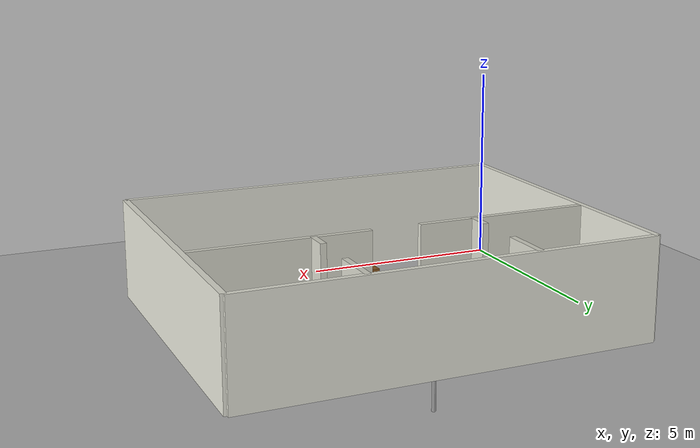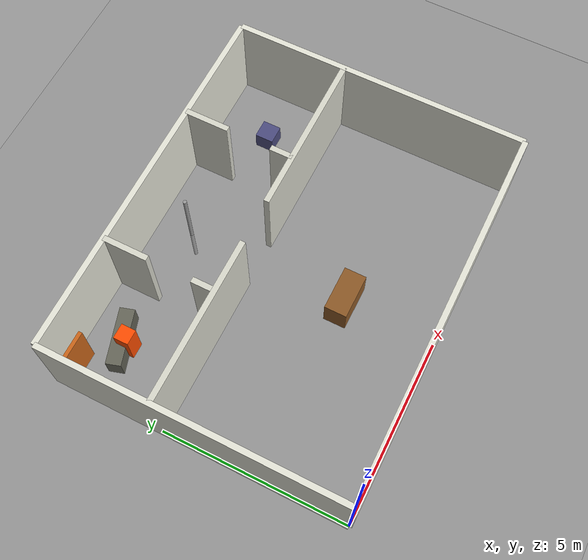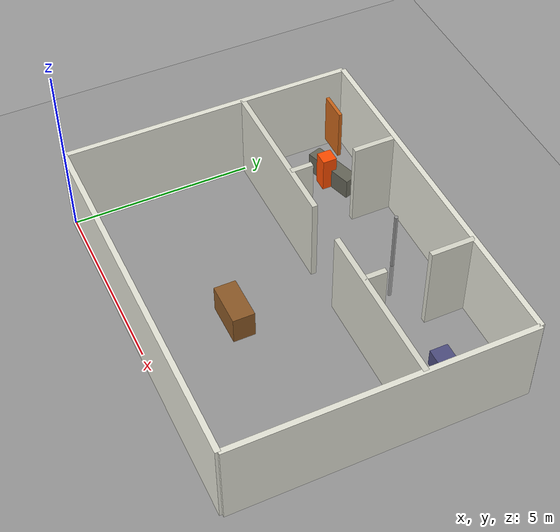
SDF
<?xml version="1.0" ?>
<sdf version="1.9">
  <world name="indoor_test">

    <!-- 필수 플러그인 (Gazebo Harmonic) -->
    <plugin filename="gz-sim-physics-system"
            name="gz::sim::systems::Physics"/>
    <plugin filename="gz-sim-user-commands-system"
            name="gz::sim::systems::UserCommands"/>
    <plugin filename="gz-sim-scene-broadcaster-system"
            name="gz::sim::systems::SceneBroadcaster"/>
    <plugin filename="gz-sim-sensors-system"
            name="gz::sim::systems::Sensors">
      <render_engine>ogre2</render_engine>
    </plugin>
    <plugin filename="gz-sim-contact-system"
            name="gz::sim::systems::Contact"/>
    <plugin filename="gz-sim-imu-system"
            name="gz::sim::systems::Imu"/>

    <!-- 대기 온도 (열화상 배경 기준) -->
    <atmosphere type="adiabatic">
      <temperature>293.15</temperature>
    </atmosphere>

    <!-- 물리 엔진 설정 -->
    <physics name="default_physics" type="ode">
      <max_step_size>0.002</max_step_size>  <!-- G-2 RTF: was 0.001 -->
      <real_time_factor>1.0</real_time_factor>
      <real_time_update_rate>500</real_time_update_rate>  <!-- G-2 RTF: was 1000 -->
    </physics>

    <!-- 조명 -->
    <light type="directional" name="sun">
      <cast_shadows>true</cast_shadows>
      <pose>0 0 10 0 0 0</pose>
      <diffuse>0.8 0.8 0.8 1</diffuse>
      <specular>0.2 0.2 0.2 1</specular>
      <attenuation>
        <range>1000</range>
        <constant>0.9</constant>
        <linear>0.01</linear>
        <quadratic>0.001</quadratic>
      </attenuation>
      <direction>-0.5 0.1 -0.9</direction>
    </light>

    <!-- 바닥 -->
    <model name="ground_plane">
      <static>true</static>
      <link name="link">
        <collision name="collision">
          <geometry>
            <plane>
              <normal>0 0 1</normal>
              <size>20 20</size>
            </plane>
          </geometry>
        </collision>
        <visual name="visual">
          <geometry>
            <plane>
              <normal>0 0 1</normal>
              <size>20 20</size>
            </plane>
          </geometry>
          <material>
            <ambient>0.6 0.6 0.6 1</ambient>
            <diffuse>0.6 0.6 0.6 1</diffuse>
          </material>
        </visual>
      </link>
    </model>

    <!-- 벽 매크로 대신 개별 벽 모델 -->
    <!-- 벽 두께: 0.15m, 높이: 2.5m -->

    <!-- ===== 외벽 ===== -->

    <!-- 남쪽 외벽 (하단) -->
    <model name="wall_south">
      <static>true</static>
      <pose>5 0 1.25 0 0 0</pose>
      <link name="link">
        <collision name="collision">
          <geometry><box><size>10 0.15 2.5</size></box></geometry>
        </collision>
        <visual name="visual">
          <geometry><box><size>10 0.15 2.5</size></box></geometry>
          <material>
            <ambient>0.9 0.9 0.85 1</ambient>
            <diffuse>0.9 0.9 0.85 1</diffuse>
          </material>
        </visual>
      </link>
    </model>

    <!-- 북쪽 외벽 (상단) -->
    <model name="wall_north">
      <static>true</static>
      <pose>5 8 1.25 0 0 0</pose>
      <link name="link">
        <collision name="collision">
          <geometry><box><size>10 0.15 2.5</size></box></geometry>
        </collision>
        <visual name="visual">
          <geometry><box><size>10 0.15 2.5</size></box></geometry>
          <material>
            <ambient>0.9 0.9 0.85 1</ambient>
            <diffuse>0.9 0.9 0.85 1</diffuse>
          </material>
        </visual>
      </link>
    </model>

    <!-- 서쪽 외벽 (좌측) -->
    <model name="wall_west">
      <static>true</static>
      <pose>0 4 1.25 0 0 0</pose>
      <link name="link">
        <collision name="collision">
          <geometry><box><size>0.15 8 2.5</size></box></geometry>
        </collision>
        <visual name="visual">
          <geometry><box><size>0.15 8 2.5</size></box></geometry>
          <material>
            <ambient>0.9 0.9 0.85 1</ambient>
            <diffuse>0.9 0.9 0.85 1</diffuse>
          </material>
        </visual>
      </link>
    </model>

    <!-- 동쪽 외벽 (우측) -->
    <model name="wall_east">
      <static>true</static>
      <pose>10 4 1.25 0 0 0</pose>
      <link name="link">
        <collision name="collision">
          <geometry><box><size>0.15 8 2.5</size></box></geometry>
        </collision>
        <visual name="visual">
          <geometry><box><size>0.15 8 2.5</size></box></geometry>
          <material>
            <ambient>0.9 0.9 0.85 1</ambient>
            <diffuse>0.9 0.9 0.85 1</diffuse>
          </material>
        </visual>
      </link>
    </model>

    <!-- ===== 내벽 (방 분리) ===== -->

    <!-- 방A-복도 구분 벽 (좌측 세로벽, 문 제외) -->
    <!-- 하단 부분: y=5 ~ y=5.6 (문 아래) -->
    <model name="wall_a_corridor_lower">
      <static>true</static>
      <pose>3 5.3 1.25 0 0 0</pose>
      <link name="link">
        <collision name="collision">
          <geometry><box><size>0.15 0.6 2.5</size></box></geometry>
        </collision>
        <visual name="visual">
          <geometry><box><size>0.15 0.6 2.5</size></box></geometry>
          <material>
            <ambient>0.85 0.85 0.80 1</ambient>
            <diffuse>0.85 0.85 0.80 1</diffuse>
          </material>
        </visual>
      </link>
    </model>

    <!-- 상단 부분: y=6.8 ~ y=8 (문 위) -->
    <model name="wall_a_corridor_upper">
      <static>true</static>
      <pose>3 7.4 1.25 0 0 0</pose>
      <link name="link">
        <collision name="collision">
          <geometry><box><size>0.15 1.2 2.5</size></box></geometry>
        </collision>
        <visual name="visual">
          <geometry><box><size>0.15 1.2 2.5</size></box></geometry>
          <material>
            <ambient>0.85 0.85 0.80 1</ambient>
            <diffuse>0.85 0.85 0.80 1</diffuse>
          </material>
        </visual>
      </link>
    </model>

    <!-- 방B-복도 구분 벽 (우측 세로벽, 문 제외) -->
    <!-- 하단 부분 -->
    <model name="wall_b_corridor_lower">
      <static>true</static>
      <pose>7 5.3 1.25 0 0 0</pose>
      <link name="link">
        <collision name="collision">
          <geometry><box><size>0.15 0.6 2.5</size></box></geometry>
        </collision>
        <visual name="visual">
          <geometry><box><size>0.15 0.6 2.5</size></box></geometry>
          <material>
            <ambient>0.85 0.85 0.80 1</ambient>
            <diffuse>0.85 0.85 0.80 1</diffuse>
          </material>
        </visual>
      </link>
    </model>

    <!-- 상단 부분 -->
    <model name="wall_b_corridor_upper">
      <static>true</static>
      <pose>7 7.4 1.25 0 0 0</pose>
      <link name="link">
        <collision name="collision">
          <geometry><box><size>0.15 1.2 2.5</size></box></geometry>
        </collision>
        <visual name="visual">
          <geometry><box><size>0.15 1.2 2.5</size></box></geometry>
          <material>
            <ambient>0.85 0.85 0.80 1</ambient>
            <diffuse>0.85 0.85 0.80 1</diffuse>
          </material>
        </visual>
      </link>
    </model>

    <!-- 복도-방C 구분 가로벽 (문 제외) -->
    <!-- 좌측 부분: x=0 ~ x=4.4 -->
    <model name="wall_corridor_c_left">
      <static>true</static>
      <pose>2.2 5 1.25 0 0 0</pose>
      <link name="link">
        <collision name="collision">
          <geometry><box><size>4.4 0.15 2.5</size></box></geometry>
        </collision>
        <visual name="visual">
          <geometry><box><size>4.4 0.15 2.5</size></box></geometry>
          <material>
            <ambient>0.85 0.85 0.80 1</ambient>
            <diffuse>0.85 0.85 0.80 1</diffuse>
          </material>
        </visual>
      </link>
    </model>

    <!-- 우측 부분: x=5.6 ~ x=10 -->
    <model name="wall_corridor_c_right">
      <static>true</static>
      <pose>7.8 5 1.25 0 0 0</pose>
      <link name="link">
        <collision name="collision">
          <geometry><box><size>4.4 0.15 2.5</size></box></geometry>
        </collision>
        <visual name="visual">
          <geometry><box><size>4.4 0.15 2.5</size></box></geometry>
          <material>
            <ambient>0.85 0.85 0.80 1</ambient>
            <diffuse>0.85 0.85 0.80 1</diffuse>
          </material>
        </visual>
      </link>
    </model>

    <!-- ===== 장애물 (가구/잔해 시뮬레이션) ===== -->

    <!-- 방 C 중앙 테이블 -->
    <model name="table_c">
      <static>true</static>
      <pose>5 2.5 0.4 0 0 0</pose>
      <link name="link">
        <collision name="collision">
          <geometry><box><size>1.2 0.6 0.8</size></box></geometry>
        </collision>
        <visual name="visual">
          <geometry><box><size>1.2 0.6 0.8</size></box></geometry>
          <material>
            <ambient>0.55 0.35 0.15 1</ambient>
            <diffuse>0.55 0.35 0.15 1</diffuse>
          </material>
        </visual>
      </link>
    </model>

    <!-- 방 A 장애물 (쓰러진 선반) -->
    <model name="debris_a">
      <static>true</static>
      <pose>1.5 7 0.3 0 0 0.3</pose>
      <link name="link">
        <collision name="collision">
          <geometry><box><size>1.5 0.4 0.6</size></box></geometry>
        </collision>
        <visual name="visual">
          <geometry><box><size>1.5 0.4 0.6</size></box></geometry>
          <material>
            <ambient>0.4 0.4 0.35 1</ambient>
            <diffuse>0.4 0.4 0.35 1</diffuse>
          </material>
        </visual>
      </link>
    </model>

    <!-- 방 B 의자 -->
    <model name="chair_b">
      <static>true</static>
      <pose>8.5 6.5 0.25 0 0 0</pose>
      <link name="link">
        <collision name="collision">
          <geometry><box><size>0.5 0.5 0.5</size></box></geometry>
        </collision>
        <visual name="visual">
          <geometry><box><size>0.5 0.5 0.5</size></box></geometry>
          <material>
            <ambient>0.3 0.3 0.5 1</ambient>
            <diffuse>0.3 0.3 0.5 1</diffuse>
          </material>
        </visual>
      </link>
    </model>

    <!-- ===== 열원 (열화상 카메라 테스트용) ===== -->

    <!-- 방 A 화재 열원 (주 화점: 쓰러진 선반 근처) -->
    <!-- 600°C = 873.15 K: 초기 화재 온도 수준 -->
    <model name="fire_source_a">
      <static>true</static>
      <pose>1.5 6.8 0.5 0 0 0</pose>
      <link name="link">
        <visual name="visual">
          <geometry>
            <box><size>0.4 0.4 1.0</size></box>
          </geometry>
          <material>
            <ambient>1.0 0.3 0.0 1</ambient>
            <diffuse>1.0 0.3 0.0 1</diffuse>
          </material>
        </visual>
      </link>
      <plugin filename="gz-sim-thermal-system"
              name="gz::sim::systems::Thermal">
        <temperature>873.15</temperature>
      </plugin>
    </model>

    <!-- 방 A 확산 열원 (벽면 복사열: 200°C) -->
    <model name="heat_wall_a">
      <static>true</static>
      <pose>0.5 7.5 1.0 0 0 0</pose>
      <link name="link">
        <visual name="visual">
          <geometry>
            <box><size>0.8 0.1 1.5</size></box>
          </geometry>
          <material>
            <ambient>0.8 0.4 0.1 1</ambient>
            <diffuse>0.8 0.4 0.1 1</diffuse>
          </material>
        </visual>
      </link>
      <plugin filename="gz-sim-thermal-system"
              name="gz::sim::systems::Thermal">
        <temperature>473.15</temperature>
      </plugin>
    </model>

    <!-- 복도 온수 파이프 (60°C: 약한 열 시그니처, 오탐 테스트용) -->
    <model name="hot_pipe_corridor">
      <static>true</static>
      <pose>5.0 7.0 0.3 0 0 0</pose>
      <link name="link">
        <visual name="visual">
          <geometry>
            <cylinder>
              <radius>0.05</radius>
              <length>3.0</length>
            </cylinder>
          </geometry>
          <material>
            <ambient>0.6 0.6 0.6 1</ambient>
            <diffuse>0.6 0.6 0.6 1</diffuse>
          </material>
        </visual>
      </link>
      <plugin filename="gz-sim-thermal-system"
              name="gz::sim::systems::Thermal">
        <temperature>333.15</temperature>
      </plugin>
    </model>

  </world>
</sdf>
